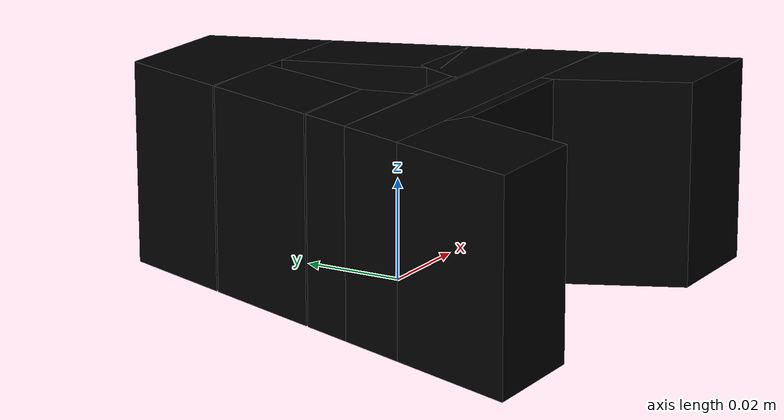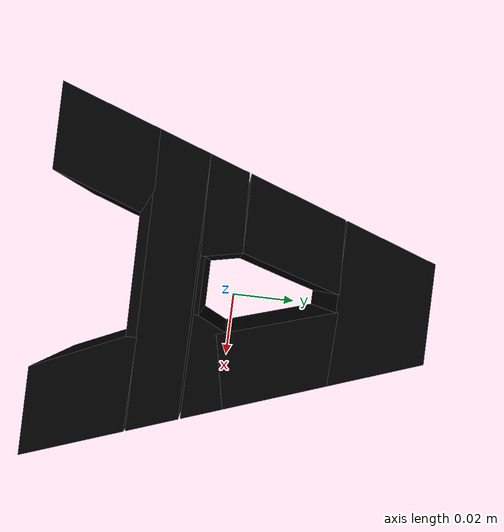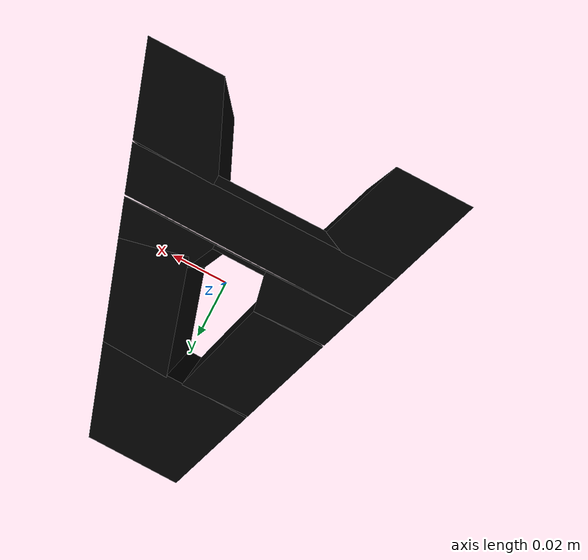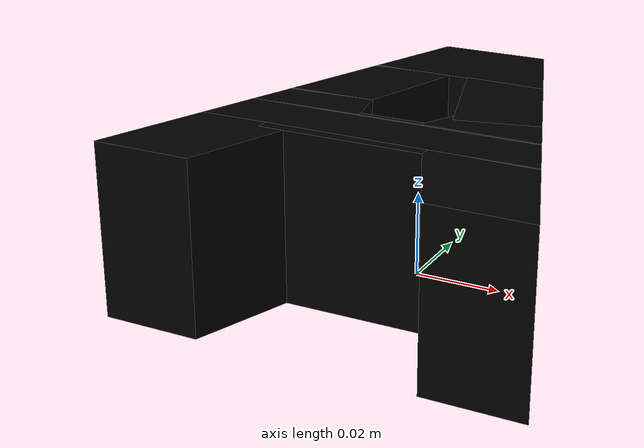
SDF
<?xml version='1.0' encoding='UTF-8'?>
<!-- This SDF was autogenerated by obj_to_drake_sdf.py -->
<sdf version="1.7">
  <model name="small_a">
    <link name="body">
      <inertial>
        <pose>0 0 0 0 0 0</pose>
        <mass>1</mass>
        <inertia>
          <ixx>0.00085841107</ixx>
          <iyy>0.00064698995</iyy>
          <izz>0.0012387344</izz>
          <ixy>5.4797349e-07</ixy>
          <ixz>-3.6915684e-20</ixz>
          <iyz>-1.8457842e-20</iyz>
        </inertia>
      </inertial>
      <visual name="convex_0">
        <pose>0 0 0 0 0 0</pose>
        <geometry>
          <mesh>
            <uri>small_a_convex_0.obj</uri>
          </mesh>
        </geometry>
        <material>
          <diffuse>0 0 0 1</diffuse>
        </material>
      </visual>
      <collision name="convex_0_volume">
        <pose>0 0 0 0 0 0</pose>
        <geometry>
          <mesh>
            <uri>small_a_convex_0.obj</uri>
          </mesh>
        </geometry>
        <drake:proximity_properties xmlns:drake="uri:drake">
          <drake:compliant_hydroelastic/>
          <drake:hydroelastic_modulus> 3.0e7 </drake:hydroelastic_modulus>
          <drake:mesh_resolution_hint> 0.18 </drake:mesh_resolution_hint>
          <drake:hunt_crossley_dissipation>10</drake:hunt_crossley_dissipation>
          <drake:mu_dynamic>0.3</drake:mu_dynamic>
        </drake:proximity_properties>
      </collision>
      <visual name="convex_1">
        <pose>0 0 0 0 0 0</pose>
        <geometry>
          <mesh>
            <uri>small_a_convex_1.obj</uri>
          </mesh>
        </geometry>
        <material>
          <diffuse>0 0 0 1</diffuse>
        </material>
      </visual>
      <collision name="convex_1_volume">
        <pose>0 0 0 0 0 0</pose>
        <geometry>
          <mesh>
            <uri>small_a_convex_1.obj</uri>
          </mesh>
        </geometry>
        <drake:proximity_properties xmlns:drake="uri:drake">
          <drake:compliant_hydroelastic/>
          <drake:hydroelastic_modulus> 3.0e7 </drake:hydroelastic_modulus>
          <drake:mesh_resolution_hint> 0.18 </drake:mesh_resolution_hint>
          <drake:hunt_crossley_dissipation>10</drake:hunt_crossley_dissipation>
          <drake:mu_dynamic>0.3</drake:mu_dynamic>
        </drake:proximity_properties>
      </collision>
      <visual name="convex_2">
        <pose>0 0 0 0 0 0</pose>
        <geometry>
          <mesh>
            <uri>small_a_convex_2.obj</uri>
          </mesh>
        </geometry>
        <material>
          <diffuse>0 0 0 1</diffuse>
        </material>
      </visual>
      <collision name="convex_2_volume">
        <pose>0 0 0 0 0 0</pose>
        <geometry>
          <mesh>
            <uri>small_a_convex_2.obj</uri>
          </mesh>
        </geometry>
        <drake:proximity_properties xmlns:drake="uri:drake">
          <drake:compliant_hydroelastic/>
          <drake:hydroelastic_modulus> 3.0e7 </drake:hydroelastic_modulus>
          <drake:mesh_resolution_hint> 0.18 </drake:mesh_resolution_hint>
          <drake:hunt_crossley_dissipation>10</drake:hunt_crossley_dissipation>
          <drake:mu_dynamic>0.3</drake:mu_dynamic>
        </drake:proximity_properties>
      </collision>
      <visual name="convex_3">
        <pose>0 0 0 0 0 0</pose>
        <geometry>
          <mesh>
            <uri>small_a_convex_3.obj</uri>
          </mesh>
        </geometry>
        <material>
          <diffuse>0 0 0 1</diffuse>
        </material>
      </visual>
      <collision name="convex_3_volume">
        <pose>0 0 0 0 0 0</pose>
        <geometry>
          <mesh>
            <uri>small_a_convex_3.obj</uri>
          </mesh>
        </geometry>
        <drake:proximity_properties xmlns:drake="uri:drake">
          <drake:compliant_hydroelastic/>
          <drake:hydroelastic_modulus> 3.0e7 </drake:hydroelastic_modulus>
          <drake:mesh_resolution_hint> 0.18 </drake:mesh_resolution_hint>
          <drake:hunt_crossley_dissipation>10</drake:hunt_crossley_dissipation>
          <drake:mu_dynamic>0.3</drake:mu_dynamic>
        </drake:proximity_properties>
      </collision>
      <visual name="convex_4">
        <pose>0 0 0 0 0 0</pose>
        <geometry>
          <mesh>
            <uri>small_a_convex_4.obj</uri>
          </mesh>
        </geometry>
        <material>
          <diffuse>0 0 0 1</diffuse>
        </material>
      </visual>
      <collision name="convex_4_volume">
        <pose>0 0 0 0 0 0</pose>
        <geometry>
          <mesh>
            <uri>small_a_convex_4.obj</uri>
          </mesh>
        </geometry>
        <drake:proximity_properties xmlns:drake="uri:drake">
          <drake:compliant_hydroelastic/>
          <drake:hydroelastic_modulus> 3.0e7 </drake:hydroelastic_modulus>
          <drake:mesh_resolution_hint> 0.18 </drake:mesh_resolution_hint>
          <drake:hunt_crossley_dissipation>10</drake:hunt_crossley_dissipation>
          <drake:mu_dynamic>0.3</drake:mu_dynamic>
        </drake:proximity_properties>
      </collision>
      <visual name="convex_5">
        <pose>0 0 0 0 0 0</pose>
        <geometry>
          <mesh>
            <uri>small_a_convex_5.obj</uri>
          </mesh>
        </geometry>
        <material>
          <diffuse>0 0 0 1</diffuse>
        </material>
      </visual>
      <collision name="convex_5_volume">
        <pose>0 0 0 0 0 0</pose>
        <geometry>
          <mesh>
            <uri>small_a_convex_5.obj</uri>
          </mesh>
        </geometry>
        <drake:proximity_properties xmlns:drake="uri:drake">
          <drake:compliant_hydroelastic/>
          <drake:hydroelastic_modulus> 3.0e7 </drake:hydroelastic_modulus>
          <drake:mesh_resolution_hint> 0.18 </drake:mesh_resolution_hint>
          <drake:hunt_crossley_dissipation>10</drake:hunt_crossley_dissipation>
          <drake:mu_dynamic>0.3</drake:mu_dynamic>
        </drake:proximity_properties>
      </collision>
      <visual name="convex_6">
        <pose>0 0 0 0 0 0</pose>
        <geometry>
          <mesh>
            <uri>small_a_convex_6.obj</uri>
          </mesh>
        </geometry>
        <material>
          <diffuse>0 0 0 1</diffuse>
        </material>
      </visual>
      <collision name="convex_6_volume">
        <pose>0 0 0 0 0 0</pose>
        <geometry>
          <mesh>
            <uri>small_a_convex_6.obj</uri>
          </mesh>
        </geometry>
        <drake:proximity_properties xmlns:drake="uri:drake">
          <drake:compliant_hydroelastic/>
          <drake:hydroelastic_modulus> 3.0e7 </drake:hydroelastic_modulus>
          <drake:mesh_resolution_hint> 0.18 </drake:mesh_resolution_hint>
          <drake:hunt_crossley_dissipation>10</drake:hunt_crossley_dissipation>
          <drake:mu_dynamic>0.3</drake:mu_dynamic>
        </drake:proximity_properties>
      </collision>
      <visual name="convex_7">
        <pose>0 0 0 0 0 0</pose>
        <geometry>
          <mesh>
            <uri>small_a_convex_7.obj</uri>
          </mesh>
        </geometry>
        <material>
          <diffuse>0 0 0 1</diffuse>
        </material>
      </visual>
      <collision name="convex_7_volume">
        <pose>0 0 0 0 0 0</pose>
        <geometry>
          <mesh>
            <uri>small_a_convex_7.obj</uri>
          </mesh>
        </geometry>
        <drake:proximity_properties xmlns:drake="uri:drake">
          <drake:compliant_hydroelastic/>
          <drake:hydroelastic_modulus> 3.0e7 </drake:hydroelastic_modulus>
          <drake:mesh_resolution_hint> 0.18 </drake:mesh_resolution_hint>
          <drake:hunt_crossley_dissipation>10</drake:hunt_crossley_dissipation>
          <drake:mu_dynamic>0.3</drake:mu_dynamic>
        </drake:proximity_properties>
      </collision>
      <visual name="convex_8">
        <pose>0 0 0 0 0 0</pose>
        <geometry>
          <mesh>
            <uri>small_a_convex_8.obj</uri>
          </mesh>
        </geometry>
        <material>
          <diffuse>0 0 0 1</diffuse>
        </material>
      </visual>
      <collision name="convex_8_volume">
        <pose>0 0 0 0 0 0</pose>
        <geometry>
          <mesh>
            <uri>small_a_convex_8.obj</uri>
          </mesh>
        </geometry>
        <drake:proximity_properties xmlns:drake="uri:drake">
          <drake:compliant_hydroelastic/>
          <drake:hydroelastic_modulus> 3.0e7 </drake:hydroelastic_modulus>
          <drake:mesh_resolution_hint> 0.18 </drake:mesh_resolution_hint>
          <drake:hunt_crossley_dissipation>10</drake:hunt_crossley_dissipation>
          <drake:mu_dynamic>0.3</drake:mu_dynamic>
        </drake:proximity_properties>
      </collision>
      <visual name="convex_9">
        <pose>0 0 0 0 0 0</pose>
        <geometry>
          <mesh>
            <uri>small_a_convex_9.obj</uri>
          </mesh>
        </geometry>
        <material>
          <diffuse>0 0 0 1</diffuse>
        </material>
      </visual>
      <collision name="convex_9_volume">
        <pose>0 0 0 0 0 0</pose>
        <geometry>
          <mesh>
            <uri>small_a_convex_9.obj</uri>
          </mesh>
        </geometry>
        <drake:proximity_properties xmlns:drake="uri:drake">
          <drake:compliant_hydroelastic/>
          <drake:hydroelastic_modulus> 3.0e7 </drake:hydroelastic_modulus>
          <drake:mesh_resolution_hint> 0.18 </drake:mesh_resolution_hint>
          <drake:hunt_crossley_dissipation>10</drake:hunt_crossley_dissipation>
          <drake:mu_dynamic>0.3</drake:mu_dynamic>
        </drake:proximity_properties>
      </collision>
    </link>
  </model>
</sdf>
